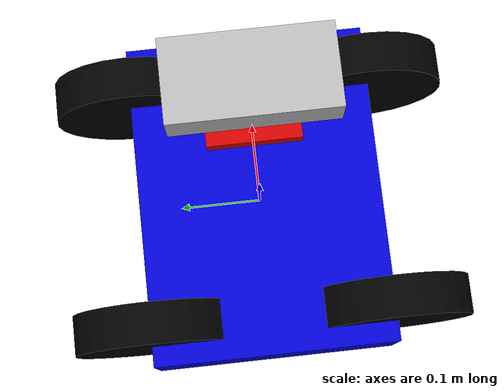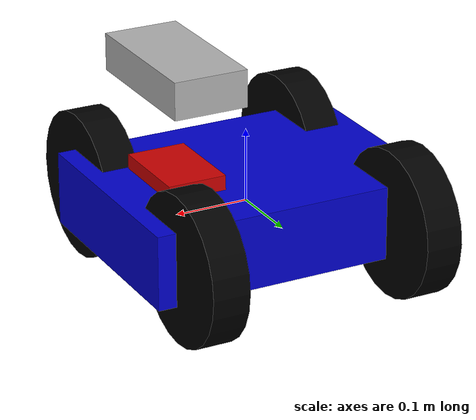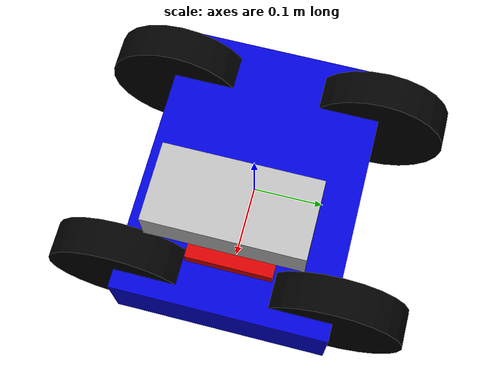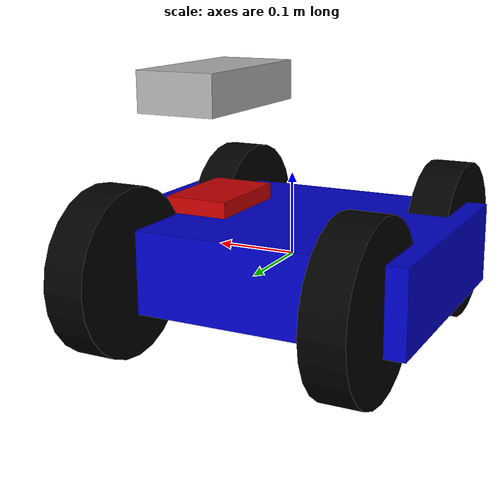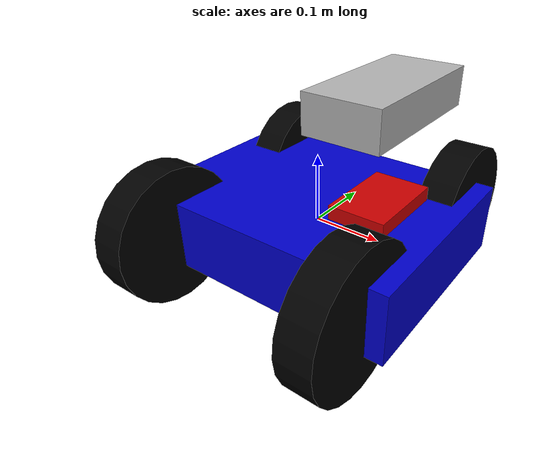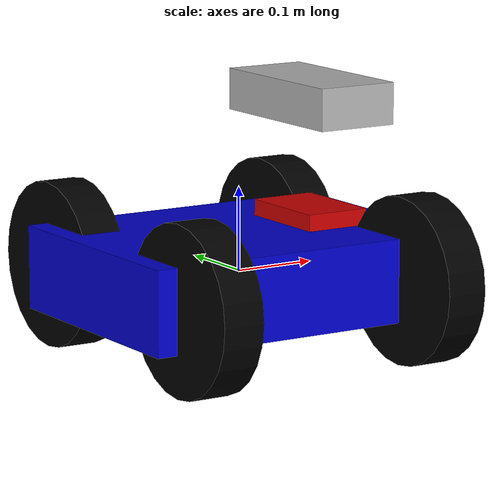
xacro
<?xml version="1.0"?>
<robot name="my_robot" xmlns:xacro="http://ros.org/wiki/xacro">

  <!-- ========== BASE FRAMES ========== -->
  <link name="odom"/>

  <!-- ========== ROBOT DIMENSIONS ========== -->
  <xacro:property name="base_length" value="0.4" />
  <xacro:property name="base_width" value="0.3" />
  <xacro:property name="base_height" value="0.1" />

  <xacro:property name="wheel_radius" value="0.1" />
  <xacro:property name="wheel_width" value="0.05" />
  <xacro:property name="wheel_y_offset" value="0.15" />
  <xacro:property name="wheel_x_offset" value="0.15" />

  <xacro:property name="camera_x" value="0.1" />
  <xacro:property name="camera_z" value="0.2" />

  <xacro:property name="vesc_x" value="0.1" />
  <xacro:property name="vesc_z" value="0.05" />

  <!-- ========== MAIN ROBOT STRUCTURE ========== -->
  <link name="base_link">
    <visual>
      <geometry>
        <box size="${base_length} ${base_width} ${base_height}"/>
      </geometry>
      <material name="blue"/>
    </visual>
    <collision>
      <geometry>
        <box size="${base_length} ${base_width} ${base_height}"/>
      </geometry>
    </collision>
    <inertial>
      <mass value="0.001"/>
      <inertia ixx="0.001" ixy="0" ixz="0" iyy="0.001" iyz="0" izz="0.001"/>
    </inertial>
  </link>

  <joint name="odom_joint" type="fixed">
    <parent link="odom"/>
    <child link="base_link"/>
    <origin xyz="0 0 0" rpy="0 0 0"/>
  </joint>

  <!-- ========== WHEELS ========== -->
  <xacro:macro name="wheel" params="name x y z">
    <link name="${name}_wheel">
      <visual>
        <geometry>
          <cylinder radius="${wheel_radius}" length="${wheel_width}"/>
        </geometry>
        <material name="black"/>
      </visual>
    </link>

    <joint name="${name}_joint" type="continuous">
      <parent link="base_link"/>
      <child link="${name}_wheel"/>
      <origin xyz="${x} ${y} ${z}" rpy="0 1.5707 0"/>
      <axis xyz="0 0 1"/>
    </joint>
  </xacro:macro>

  <xacro:wheel name="front_left" x="${wheel_x_offset}" y="${wheel_y_offset}" z="0"/>
  <xacro:wheel name="front_right" x="${wheel_x_offset}" y="-${wheel_y_offset}" z="0"/>
  <xacro:wheel name="rear_left" x="-${wheel_x_offset}" y="${wheel_y_offset}" z="0"/>
  <xacro:wheel name="rear_right" x="-${wheel_x_offset}" y="-${wheel_y_offset}" z="0"/>

  <!-- ========== CAMERA ========== -->
  <link name="zed_camera_link">
    <visual>
      <geometry>
        <box size="0.1 0.2 0.05"/>
      </geometry>
      <material name="gray"/>
    </visual>
  </link>

  <joint name="camera_joint" type="fixed">
    <parent link="base_link"/>
    <child link="zed_camera_link"/>
    <origin xyz="${camera_x} 0 ${camera_z}" rpy="0 0 0"/>
  </joint>

  <!-- ========== VESC ========== -->
  <link name="vesc_link">
    <visual>
      <geometry>
        <box size="0.08 0.12 0.04"/>
      </geometry>
      <material name="red"/>
    </visual>
  </link>

  <joint name="vesc_joint" type="fixed">
    <parent link="base_link"/>
    <child link="vesc_link"/>
    <origin xyz="${vesc_x} 0 ${vesc_z}" rpy="0 0 0"/>
  </joint>

  <!-- ========== MATERIAL DEFINITIONS ========== -->
  <material name="blue">
    <color rgba="0 0 0.8 1"/>
  </material>
  <material name="black">
    <color rgba="0 0 0 1"/>
  </material>
  <material name="gray">
    <color rgba="0.7 0.7 0.7 1"/>
  </material>
  <material name="red">
    <color rgba="0.8 0 0 1"/>
  </material>
</robot>
